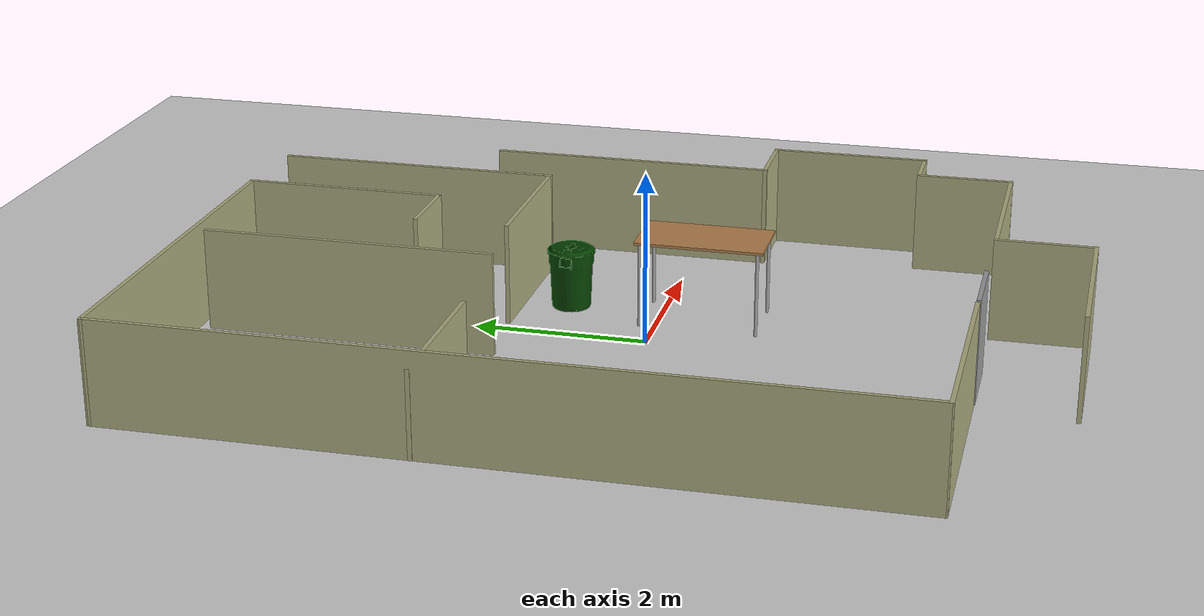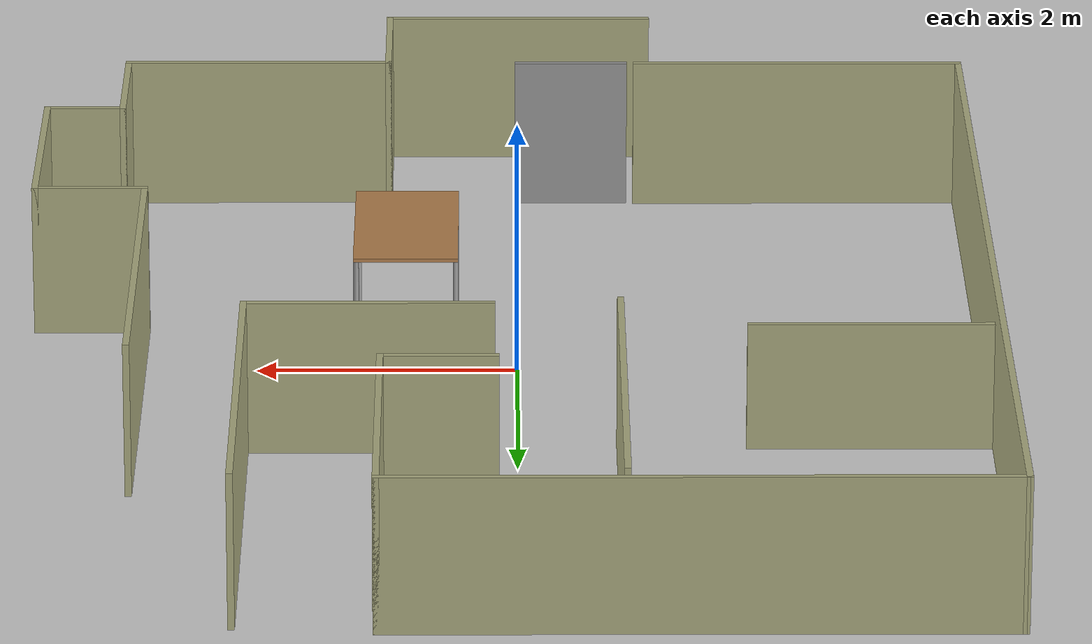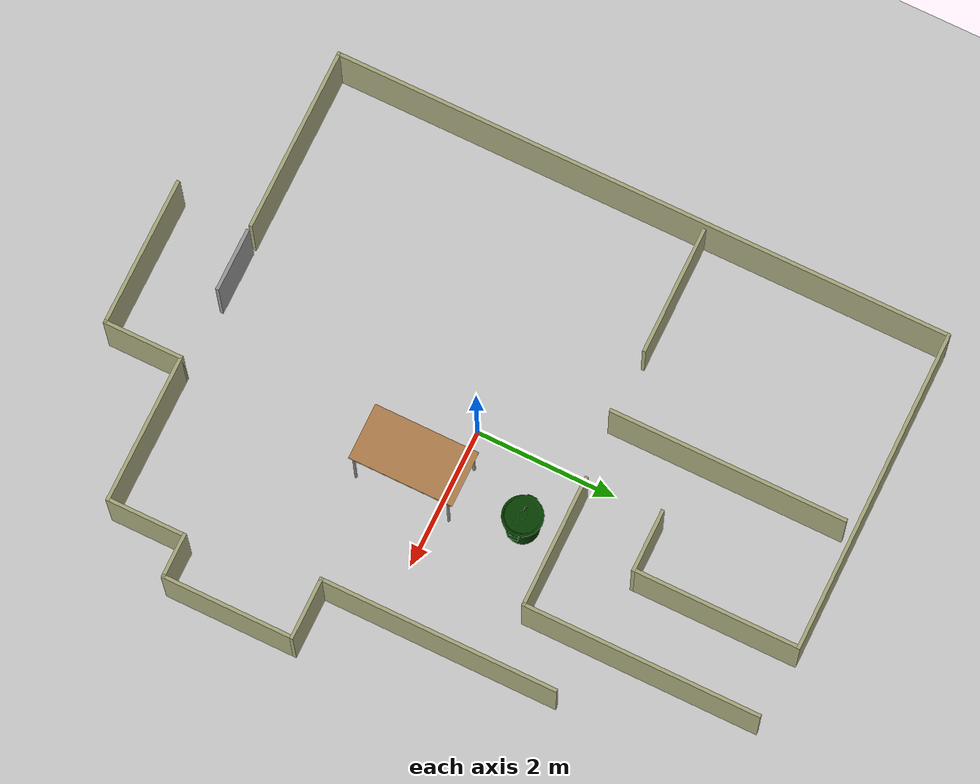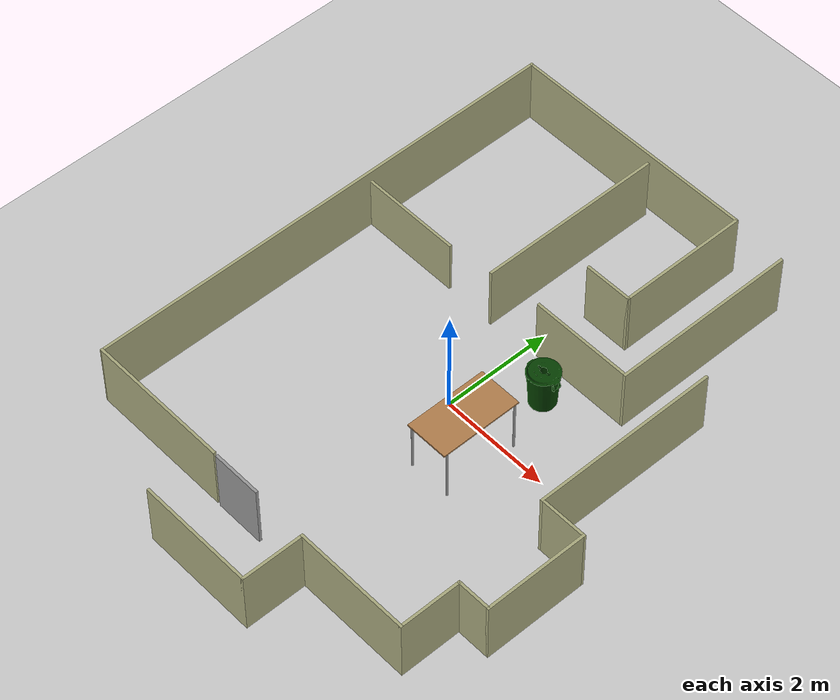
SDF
<sdf version="1.9">
 <world name="world_template">
  <scene><ambient>1 1 1 1</ambient><background>0.8 0.8 0.8 1</background><shadows>true</shadows></scene>
  <gravity>0 0 -9.8</gravity>
  <magnetic_field>6e-06 2.3e-05 -4.2e-05</magnetic_field>
  <atmosphere type="adiabatic"/>
  <physics type="ode">
   <max_step_size>0.001</max_step_size>
   <real_time_factor>1</real_time_factor>
   <real_time_update_rate>1000</real_time_update_rate>
  </physics>
  <light name="sun" type="directional">
   <pose>0 0 10 0 -0 0</pose>
   <intensity>1</intensity>
   <direction>-0.5 0.1 -0.9</direction>
   <diffuse>0.8 0.8 0.8 1</diffuse>
   <specular>0.2 0.2 0.2 1</specular>
   <attenuation>
    <range>1000</range>
    <linear>0.01</linear>
    <constant>0.90000000000000002</constant>
    <quadratic>0.001</quadratic>
   </attenuation>
   <spot><inner_angle>0</inner_angle><outer_angle>0</outer_angle><falloff>0</falloff></spot>
  </light>
  <model name="ground_plane">
   <static>true</static>
   <link name="link">
    <collision name="collision">
     <geometry><plane><normal>0 0 1</normal><size>100 100</size></plane></geometry>
    </collision>
    <visual name="visual">
     <geometry><plane><normal>0 0 1</normal><size>100 100</size></plane></geometry>
     <material>
      <ambient>0.8 0.8 0.8 1</ambient>
      <diffuse>0.8 0.8 0.8 1</diffuse>
      <specular>0.8 0.8 0.8 1</specular>
     </material>
    </visual>
    <inertial>
     <mass>1</mass>
     <inertia><ixx>1</ixx><ixy>0</ixy><ixz>0</ixz><iyy>1</iyy><iyz>0</iyz><izz>1</izz></inertia>
    </inertial>
   </link>
  </model>
  <include><uri>model://walls</uri></include>
  <include>
   <uri>model://table</uri>
   <name>table0</name>
   <pose>0.85 -0.5 0.0 0.0 0.0 -1.5707963267948966</pose>
  </include>
  <include>
   <uri>model://first_2015_trash_can</uri>
   <name>trash</name>
   <pose>0.9 1.1 0.0 0.0 0.0 1.5707963267948966</pose>
  </include>
 </world>
</sdf>

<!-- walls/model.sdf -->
<sdf version='1.6'>
  <model name='walls'>
    <pose frame=''>0.070483 0.106017 0 0 -0 0</pose>
    <link name='Door_4'>
      <collision name='Door_4_Collision'>
        <geometry>
          <box>
            <size>0.906 0.05 1.2</size>
          </box>
        </geometry>
        <pose frame=''>0 0 0.6 0 -0 0</pose>
      </collision>
      <visual name='Door_4_Visual'>
        <pose frame=''>0 0 0.6 0 -0 0</pose>
        <geometry>
          <box>
            <size>0.906 0.05 1.2</size>
          </box>
        </geometry>
        <material>
          <script>
            <uri>file://media/materials/scripts/gazebo.material</uri>
            <name>Gazebo/Grey</name>
          </script>
        </material>
      </visual>
      <pose frame=''>-0.514741 -3.87011 0 0 0 -0.000969</pose>
    </link>
    <link name='Wall_19'>
      <collision name='Wall_19_Collision'>
        <geometry>
          <box>
            <size>1.9 0.05 1</size>
          </box>
        </geometry>
        <pose frame=''>0 0 0.5 0 -0 0</pose>
      </collision>
      <visual name='Wall_19_Visual'>
        <pose frame=''>0 0 0.5 0 -0 0</pose>
        <geometry>
          <box>
            <size>1.9 0.05 1</size>
          </box>
        </geometry>
        <material>
          <script>
            <uri>file://media/materials/scripts/gazebo.material</uri>
            <name>Gazebo/Grey</name>
          </script>
          <ambient>0.666667 0.666667 0.498039 1</ambient>
        </material>
      </visual>
      <pose frame=''>-2.73248 1.48798 0 0 -0 0</pose>
    </link>
    <link name='Wall_21'>
      <collision name='Wall_21_Collision'>
        <geometry>
          <box>
            <size>2.15 0.05 1.2</size>
          </box>
        </geometry>
        <pose frame=''>0 0 0.6 0 -0 0</pose>
      </collision>
      <visual name='Wall_21_Visual'>
        <pose frame=''>0 0 0.6 0 -0 0</pose>
        <geometry>
          <box>
            <size>2.15 0.05 1.2</size>
          </box>
        </geometry>
        <material>
          <script>
            <uri>file://media/materials/scripts/gazebo.material</uri>
            <name>Gazebo/Grey</name>
          </script>
          <ambient>0.666667 0.666667 0.498039 1</ambient>
        </material>
      </visual>
      <pose frame=''>-0.092483 -4.98802 0 0 -0 0</pose>
    </link>
    <link name='Wall_22'>
      <collision name='Wall_22_Collision'>
        <geometry>
          <box>
            <size>1.15 0.05 1.2</size>
          </box>
        </geometry>
        <pose frame=''>0 0 0.6 0 -0 0</pose>
      </collision>
      <visual name='Wall_22_Visual'>
        <pose frame=''>0 0 0.6 0 -0 0</pose>
        <geometry>
          <box>
            <size>1.15 0.05 1.2</size>
          </box>
        </geometry>
        <material>
          <script>
            <uri>file://media/materials/scripts/gazebo.material</uri>
            <name>Gazebo/Grey</name>
          </script>
          <ambient>0.666667 0.666667 0.498039 1</ambient>
        </material>
      </visual>
      <pose frame=''>0.957517 -4.43802 0 0 -0 1.5708</pose>
    </link>
    <link name='Wall_23'>
      <collision name='Wall_23_Collision'>
        <geometry>
          <box>
            <size>2.15 0.05 1.2</size>
          </box>
        </geometry>
        <pose frame=''>0 0 0.6 0 -0 0</pose>
      </collision>
      <visual name='Wall_23_Visual'>
        <pose frame=''>0 0 0.6 0 -0 0</pose>
        <geometry>
          <box>
            <size>2.15 0.05 1.2</size>
          </box>
        </geometry>
        <material>
          <script>
            <uri>file://media/materials/scripts/gazebo.material</uri>
            <name>Gazebo/Grey</name>
          </script>
          <ambient>0.666667 0.666667 0.498039 1</ambient>
        </material>
      </visual>
      <pose frame=''>2.00752 -3.88802 0 0 -0 0</pose>
    </link>
    <link name='Wall_24'>
      <collision name='Wall_24_Collision'>
        <geometry>
          <box>
            <size>1.15 0.05 1.2</size>
          </box>
        </geometry>
        <pose frame=''>0 0 0.6 0 -0 0</pose>
      </collision>
      <visual name='Wall_24_Visual'>
        <pose frame=''>0 0 0.6 0 -0 0</pose>
        <geometry>
          <box>
            <size>1.15 0.05 1.2</size>
          </box>
        </geometry>
        <material>
          <script>
            <uri>file://media/materials/scripts/gazebo.material</uri>
            <name>Gazebo/Grey</name>
          </script>
          <ambient>0.666667 0.666667 0.498039 1</ambient>
        </material>
      </visual>
      <pose frame=''>3.05752 -3.33802 0 0 -0 1.5708</pose>
    </link>
    <link name='Wall_25'>
      <collision name='Wall_25_Collision'>
        <geometry>
          <box>
            <size>0.65 0.05 1.2</size>
          </box>
        </geometry>
        <pose frame=''>0 0 0.6 0 -0 0</pose>
      </collision>
      <visual name='Wall_25_Visual'>
        <pose frame=''>0 0 0.6 0 -0 0</pose>
        <geometry>
          <box>
            <size>0.65 0.05 1.2</size>
          </box>
        </geometry>
        <material>
          <script>
            <uri>file://media/materials/scripts/gazebo.material</uri>
            <name>Gazebo/Grey</name>
          </script>
          <ambient>0.666667 0.666667 0.498039 1</ambient>
        </material>
      </visual>
      <pose frame=''>3.35752 -2.78802 0 0 -0 0</pose>
    </link>
    <link name='Wall_26'>
      <collision name='Wall_26_Collision'>
        <geometry>
          <box>
            <size>1.9 0.05 1.2</size>
          </box>
        </geometry>
        <pose frame=''>0 0 0.6 0 -0 0</pose>
      </collision>
      <visual name='Wall_26_Visual'>
        <pose frame=''>0 0 0.6 0 -0 0</pose>
        <geometry>
          <box>
            <size>1.9 0.05 1.2</size>
          </box>
        </geometry>
        <material>
          <script>
            <uri>file://media/materials/scripts/gazebo.material</uri>
            <name>Gazebo/Grey</name>
          </script>
          <ambient>0.666667 0.666667 0.498039 1</ambient>
        </material>
      </visual>
      <pose frame=''>3.65752 -1.86302 0 0 -0 1.5708</pose>
    </link>
    <link name='Wall_27'>
      <collision name='Wall_27_Collision'>
        <geometry>
          <box>
            <size>0.9 0.05 1.2</size>
          </box>
        </geometry>
        <pose frame=''>0 0 0.6 0 -0 0</pose>
      </collision>
      <visual name='Wall_27_Visual'>
        <pose frame=''>0 0 0.6 0 -0 0</pose>
        <geometry>
          <box>
            <size>0.9 0.05 1.2</size>
          </box>
        </geometry>
        <material>
          <script>
            <uri>file://media/materials/scripts/gazebo.material</uri>
            <name>Gazebo/Grey</name>
          </script>
          <ambient>0.666667 0.666667 0.498039 1</ambient>
        </material>
      </visual>
      <pose frame=''>3.23252 -0.938017 0 0 -0 3.14159</pose>
    </link>
    <link name='Wall_36'>
      <collision name='Wall_36_Collision'>
        <geometry>
          <box>
            <size>1.9 0.05 1.2</size>
          </box>
        </geometry>
        <pose frame=''>0 0 0.6 0 -0 0</pose>
      </collision>
      <visual name='Wall_36_Visual'>
        <pose frame=''>0 0 0.6 0 -0 0</pose>
        <geometry>
          <box>
            <size>1.9 0.05 1.2</size>
          </box>
        </geometry>
        <material>
          <script>
            <uri>file://media/materials/scripts/gazebo.material</uri>
            <name>Gazebo/Grey</name>
          </script>
          <ambient>0.666667 0.666667 0.498039 1</ambient>
        </material>
      </visual>
      <pose frame=''>1.04652 1.55798 0 0 -0 0</pose>
    </link>
    <link name='Wall_48'>
      <collision name='Wall_48_Collision'>
        <geometry>
          <box>
            <size>8.90001 0.05 1.2</size>
          </box>
        </geometry>
        <pose frame=''>0 0 0.6 0 -0 0</pose>
      </collision>
      <visual name='Wall_48_Visual'>
        <pose frame=''>0 0 0.6 0 -0 0</pose>
        <geometry>
          <box>
            <size>8.90001 0.05 1.2</size>
          </box>
        </geometry>
        <material>
          <script>
            <uri>file://media/materials/scripts/gazebo.material</uri>
            <name>Gazebo/Grey</name>
          </script>
          <ambient>0.666667 0.666667 0.498039 1</ambient>
        </material>
      </visual>
      <pose frame=''>-3.65148 0.562983 0 0 -0 1.57215</pose>
    </link>
    <link name='Wall_49'>
      <collision name='Wall_49_Collision'>
        <geometry>
          <box>
            <size>4.65 0.05 1.2</size>
          </box>
        </geometry>
        <pose frame=''>0 0 0.6 0 -0 0</pose>
      </collision>
      <visual name='Wall_49_Visual'>
        <pose frame=''>0 0 0.6 0 -0 0</pose>
        <geometry>
          <box>
            <size>4.65 0.05 1.2</size>
          </box>
        </geometry>
        <material>
          <script>
            <uri>file://media/materials/scripts/gazebo.material</uri>
            <name>Gazebo/Grey</name>
          </script>
          <ambient>0.666667 0.666667 0.498039 1</ambient>
        </material>
      </visual>
      <pose frame=''>-1.35748 4.98798 0 0 -0 0</pose>
    </link>
    <link name='Wall_50'>
      <collision name='Wall_50_Collision'>
        <geometry>
          <box>
            <size>2.4 0.05 1.2</size>
          </box>
        </geometry>
        <pose frame=''>0 0 0.6 0 -0 0</pose>
      </collision>
      <visual name='Wall_50_Visual'>
        <pose frame=''>0 0 0.6 0 -0 0</pose>
        <geometry>
          <box>
            <size>2.4 0.05 1.2</size>
          </box>
        </geometry>
        <material>
          <script>
            <uri>file://media/materials/scripts/gazebo.material</uri>
            <name>Gazebo/Grey</name>
          </script>
          <ambient>0.666667 0.666667 0.498039 1</ambient>
        </material>
      </visual>
      <pose frame=''>0.942517 3.81298 0 0 0 -1.5708</pose>
    </link>
    <link name='Wall_51'>
      <collision name='Wall_51_Collision'>
        <geometry>
          <box>
            <size>0.9 0.05 1.2</size>
          </box>
        </geometry>
        <pose frame=''>0 0 0.6 0 -0 0</pose>
      </collision>
      <visual name='Wall_51_Visual'>
        <pose frame=''>0 0 0.6 0 -0 0</pose>
        <geometry>
          <box>
            <size>0.9 0.05 1.2</size>
          </box>
        </geometry>
        <material>
          <script>
            <uri>file://media/materials/scripts/gazebo.material</uri>
            <name>Gazebo/Grey</name>
          </script>
          <ambient>0.666667 0.666667 0.498039 1</ambient>
        </material>
      </visual>
      <pose frame=''>0.517517 2.63798 0 0 -0 3.14159</pose>
    </link>
    <link name='Wall_53'>
      <collision name='Wall_53_Collision'>
        <geometry>
          <box>
            <size>3.4 0.05 1.2</size>
          </box>
        </geometry>
        <pose frame=''>0 0 0.6 0 -0 0</pose>
      </collision>
      <visual name='Wall_53_Visual'>
        <pose frame=''>0 0 0.6 0 -0 0</pose>
        <geometry>
          <box>
            <size>3.4 0.05 1.2</size>
          </box>
        </geometry>
        <material>
          <script>
            <uri>file://media/materials/scripts/gazebo.material</uri>
            <name>Gazebo/Grey</name>
          </script>
          <ambient>0.666667 0.666667 0.498039 1</ambient>
        </material>
      </visual>
      <pose frame=''>-0.835483 3.14198 0 0 -0 1.5708</pose>
    </link>
    <link name='Wall_58'>
      <collision name='Wall_58_Collision'>
        <geometry>
          <box>
            <size>3.4 0.05 1.2</size>
          </box>
        </geometry>
        <pose frame=''>0 0 0.6 0 -0 0</pose>
      </collision>
      <visual name='Wall_58_Visual'>
        <pose frame=''>0 0 0.6 0 -0 0</pose>
        <geometry>
          <box>
            <size>3.4 0.05 1.2</size>
          </box>
        </geometry>
        <material>
          <script>
            <uri>file://media/materials/scripts/gazebo.material</uri>
            <name>Gazebo/Grey</name>
          </script>
          <ambient>0.666667 0.666667 0.498039 1</ambient>
        </material>
      </visual>
      <pose frame=''>1.97152 3.23298 0 0 -0 1.5708</pose>
    </link>
    <link name='Wall_61'>
      <collision name='Wall_61_Collision'>
        <geometry>
          <box>
            <size>2.65 0.05 1.2</size>
          </box>
        </geometry>
        <pose frame=''>0 0 0.6 0 -0 0</pose>
      </collision>
      <visual name='Wall_61_Visual'>
        <pose frame=''>0 0 0.6 0 -0 0</pose>
        <geometry>
          <box>
            <size>2.65 0.05 1.2</size>
          </box>
        </geometry>
        <material>
          <script>
            <uri>file://media/materials/scripts/gazebo.material</uri>
            <name>Gazebo/Grey</name>
          </script>
          <ambient>0.666667 0.666667 0.498039 1</ambient>
        </material>
      </visual>
      <pose frame=''>-2.34548 -3.86202 0 0 -0 0</pose>
    </link>
    <link name='Wall_63'>
      <collision name='Wall_63_Collision'>
        <geometry>
          <box>
            <size>3.4 0.05 1.2</size>
          </box>
        </geometry>
        <pose frame=''>0 0 0.6 0 -0 0</pose>
      </collision>
      <visual name='Wall_63_Visual'>
        <pose frame=''>0 0 0.6 0 -0 0</pose>
        <geometry>
          <box>
            <size>3.4 0.05 1.2</size>
          </box>
        </geometry>
        <material>
          <script>
            <uri>file://media/materials/scripts/gazebo.material</uri>
            <name>Gazebo/Grey</name>
          </script>
          <ambient>0.666667 0.666667 0.498039 1</ambient>
        </material>
      </visual>
      <pose frame=''>2.80752 0.736983 0 0 -0 1.5708</pose>
    </link>
    <static>1</static>
  </model>
</sdf>

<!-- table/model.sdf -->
<sdf version="1.5">
  <model name="table">
    <static>true</static>
    <link name="link">
      <collision name="surface">
        <pose>0 0 1.0 0 0 0</pose>
        <geometry>
          <box>
            <size>1.5 0.8 0.03</size>
          </box>
        </geometry>
        <surface>
          <friction>
            <ode>
              <mu>0.6</mu>
              <mu2>0.6</mu2>
            </ode>
          </friction>
        </surface>
      </collision>
      <visual name="visual1">
        <pose>0 0 1.0 0 0 0</pose>
        <geometry>
          <box>
            <size>1.5 0.8 0.03</size>
          </box>
        </geometry>
        <material>
          <script>
            <uri>model://media/materials/scripts/gazebo.material</uri>
            <name>Gazebo/Wood</name>
          </script>
        </material>
      </visual>
      <collision name="front_left_leg">
        <pose>0.68 0.38 0.5 0 0 0</pose>
        <geometry>
          <cylinder>
            <radius>0.02</radius>
            <length>1.0</length>
          </cylinder>
        </geometry>
      </collision>
      <visual name="front_left_leg">
        <pose>0.68 0.38 0.5 0 0 0</pose>
        <geometry>
          <cylinder>
            <radius>0.02</radius>
            <length>1.0</length>
          </cylinder>
        </geometry>
        <material>
          <script>
            <uri>model://media/materials/scripts/gazebo.material</uri>
            <name>Gazebo/Grey</name>
          </script>
        </material>
      </visual>
      <collision name="front_right_leg">
        <pose>0.68 -0.38 0.5 0 0 0</pose>
        <geometry>
          <cylinder>
            <radius>0.02</radius>
            <length>1.0</length>
          </cylinder>
        </geometry>
      </collision>
      <visual name="front_right_leg">
        <pose>0.68 -0.38 0.5 0 0 0</pose>
        <geometry>
          <cylinder>
            <radius>0.02</radius>
            <length>1.0</length>
          </cylinder>
        </geometry>
        <material>
          <script>
            <uri>model://media/materials/scripts/gazebo.material</uri>
            <name>Gazebo/Grey</name>
          </script>
        </material>
      </visual>
      <collision name="back_right_leg">
        <pose>-0.68 -0.38 0.5 0 0 0</pose>
        <geometry>
          <cylinder>
            <radius>0.02</radius>
            <length>1.0</length>
          </cylinder>
        </geometry>
      </collision>
      <visual name="back_right_leg">
        <pose>-0.68 -0.38 0.5 0 0 0</pose>
        <geometry>
          <cylinder>
            <radius>0.02</radius>
            <length>1.0</length>
          </cylinder>
        </geometry>
        <material>
          <script>
            <uri>model://media/materials/scripts/gazebo.material</uri>
            <name>Gazebo/Grey</name>
          </script>
        </material>
      </visual>
      <collision name="back_left_leg">
        <pose>-0.68 0.38 0.5 0 0 0</pose>
        <geometry>
          <cylinder>
            <radius>0.02</radius>
            <length>1.0</length>
          </cylinder>
        </geometry>
      </collision>
      <visual name="back_left_leg">
        <pose>-0.68 0.38 0.5 0 0 0</pose>
        <geometry>
          <cylinder>
            <radius>0.02</radius>
            <length>1.0</length>
          </cylinder>
        </geometry>
        <material>
          <script>
            <uri>model://media/materials/scripts/gazebo.material</uri>
            <name>Gazebo/Grey</name>
          </script>
        </material>
      </visual>
    </link>
  </model>
</sdf>

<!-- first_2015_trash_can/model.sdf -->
<sdf version="1.5">
  <model name="first_2015_trash_can">
    <link name="link">
      <inertial>
        <pose>0 0 0.3683 0 0 0</pose>
        <mass>4.83076</mass>
        <inertia>
          <ixx>0.281534052</ixx>
          <ixy>0</ixy>
          <ixz>0</ixz>
          <iyy>0.281534052</iyy>
          <iyz>0</iyz>
          <izz>0.126222831</izz>
        </inertia>
      </inertial>

      <visual name="visual">
        <geometry>
          <mesh>
            <uri>model://first_2015_trash_can/meshes/trash_can.dae</uri>
          </mesh>
        </geometry>
      </visual>

      <collision name="collision">
        <geometry>
          <mesh>
            <uri>model://first_2015_trash_can/meshes/trash_can.dae</uri>
          </mesh>
        </geometry>
      </collision>
    </link>
  </model>
</sdf>
